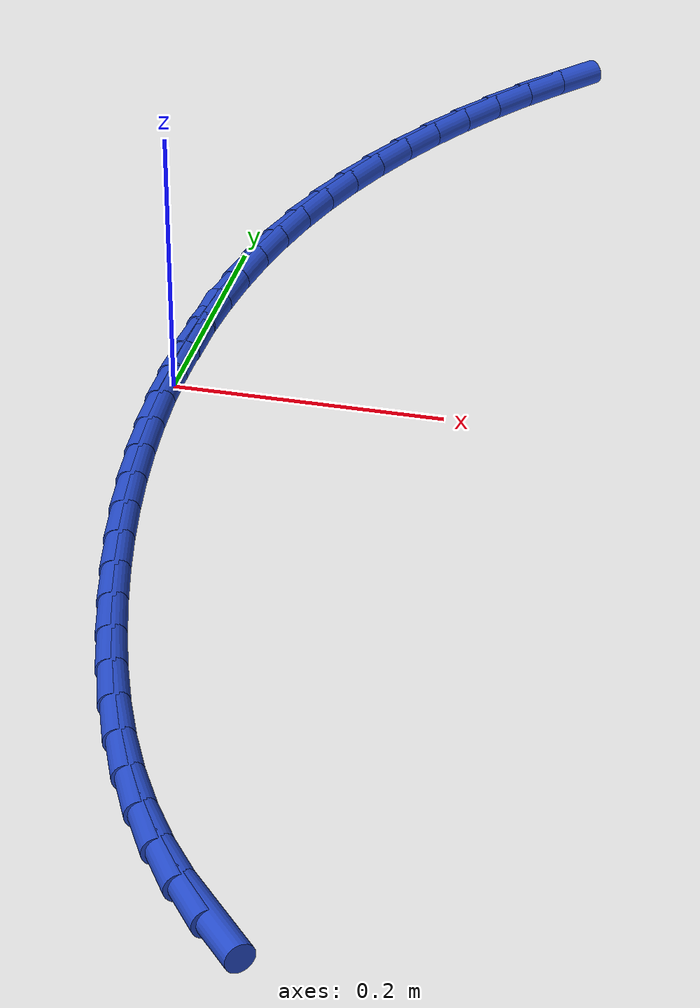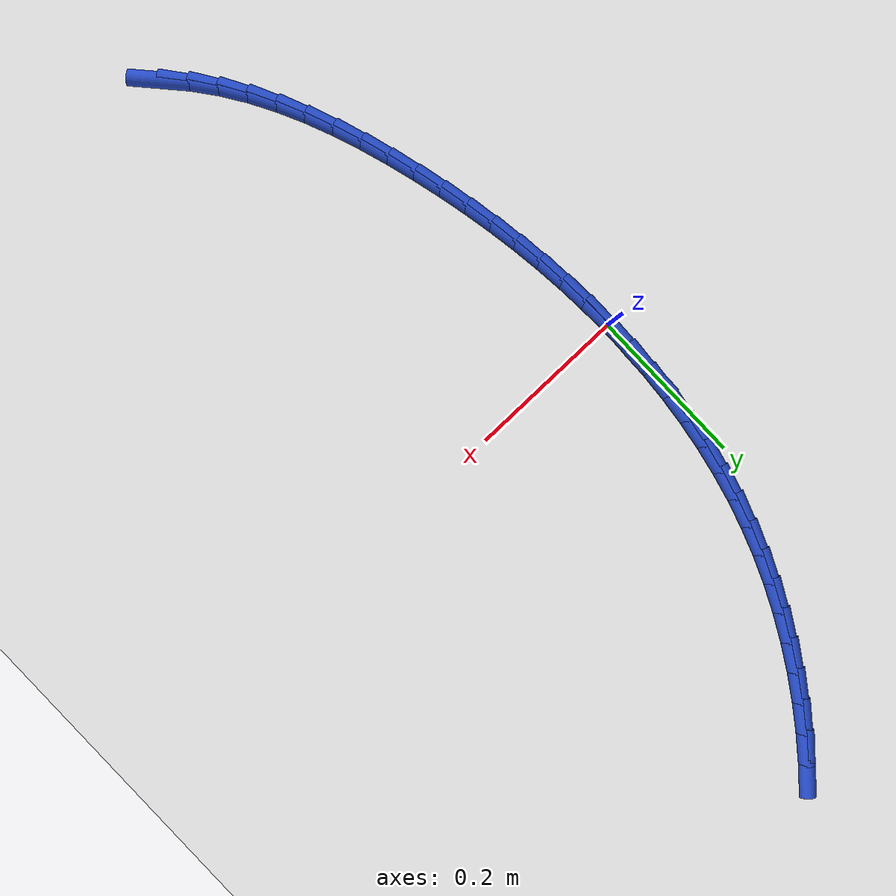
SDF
<sdf version="1.6">
 <world name="default">
  <model name="ground_plane">
   <static>1</static>
   <link name="link">
    <collision name="collision">
     <geometry><plane><normal>0 0 1</normal><size>100 100</size></plane></geometry>
     <surface><friction><ode><mu>100</mu><mu2>50</mu2></ode></friction></surface>
    </collision>
    <visual name="visual">
     <cast_shadows>0</cast_shadows>
     <geometry><plane><normal>0 0 1</normal><size>100 100</size></plane></geometry>
     <material>
      <script><uri>file://media/materials/scripts/gazebo.material</uri><name>Gazebo/WhiteGlow</name></script>
     </material>
    </visual>
   </link>
  </model>
  <model name="line">
   <link name="link_0">
    <pose>2.0816681711721685e-17 2.7755575615628914e-17 0.01 0 1.57 1.5674172207228398</pose>
    <collision name="collision">
     <geometry><cylinder><radius>0.01</radius><length>0.08</length></cylinder></geometry>
    </collision>
    <visual name="visual">
     <material>
      <script><name>Gazebo/Blue</name><uri>file://media/materials/scripts/gazebo.material</uri></script>
     </material>
     <geometry><cylinder><radius>0.01</radius><length>0.08</length></cylinder></geometry>
    </visual>
   </link>
   <link name="link_1">
    <pose>0.00012144590236197738 0.03594010887325938 0.01 0 1.57 1.5309326183171914</pose>
    <collision name="collision">
     <geometry><cylinder><radius>0.01</radius><length>0.08</length></cylinder></geometry>
    </collision>
    <visual name="visual">
     <material>
      <script><name>Gazebo/Blue</name><uri>file://media/materials/scripts/gazebo.material</uri></script>
     </material>
     <geometry><cylinder><radius>0.01</radius><length>0.08</length></cylinder></geometry>
    </visual>
   </link>
   <link name="link_2">
    <pose>0.0015566333333428928 0.07192339239421906 0.01 0 1.57 1.4927208288331493</pose>
    <collision name="collision">
     <geometry><cylinder><radius>0.01</radius><length>0.08</length></cylinder></geometry>
    </collision>
    <visual name="visual">
     <material>
      <script><name>Gazebo/Blue</name><uri>file://media/materials/scripts/gazebo.material</uri></script>
     </material>
     <geometry><cylinder><radius>0.01</radius><length>0.08</length></cylinder></geometry>
    </visual>
   </link>
   <link name="link_3">
    <pose>0.004368637798115889 0.10786665788281713 0.01 0 1.57 1.4526475874665907</pose>
    <collision name="collision">
     <geometry><cylinder><radius>0.01</radius><length>0.08</length></cylinder></geometry>
    </collision>
    <visual name="visual">
     <material>
      <script><name>Gazebo/Blue</name><uri>file://media/materials/scripts/gazebo.material</uri></script>
     </material>
     <geometry><cylinder><radius>0.01</radius><length>0.08</length></cylinder></geometry>
    </visual>
   </link>
   <link name="link_4">
    <pose>0.008620534801854101 0.1436867126589916 0.01 0 1.57 1.4105896299389509</pose>
    <collision name="collision">
     <geometry><cylinder><radius>0.01</radius><length>0.08</length></cylinder></geometry>
    </collision>
    <visual name="visual">
     <material>
      <script><name>Gazebo/Blue</name><uri>file://media/materials/scripts/gazebo.material</uri></script>
     </material>
     <geometry><cylinder><radius>0.01</radius><length>0.08</length></cylinder></geometry>
    </visual>
   </link>
   <link name="link_5">
    <pose>0.014375399849730656 0.17930036404268065 0.01 0 1.57 1.3664394820661452</pose>
    <collision name="collision">
     <geometry><cylinder><radius>0.01</radius><length>0.08</length></cylinder></geometry>
    </collision>
    <visual name="visual">
     <material>
      <script><name>Gazebo/Blue</name><uri>file://media/materials/scripts/gazebo.material</uri></script>
     </material>
     <geometry><cylinder><radius>0.01</radius><length>0.08</length></cylinder></geometry>
    </visual>
   </link>
   <link name="link_6">
    <pose>0.021696308446918666 0.21462441935382215 0.01 0 1.57 1.3201114064045705</pose>
    <collision name="collision">
     <geometry><cylinder><radius>0.01</radius><length>0.08</length></cylinder></geometry>
    </collision>
    <visual name="visual">
     <material>
      <script><name>Gazebo/Blue</name><uri>file://media/materials/scripts/gazebo.material</uri></script>
     </material>
     <geometry><cylinder><radius>0.01</radius><length>0.08</length></cylinder></geometry>
    </visual>
   </link>
   <link name="link_7">
    <pose>0.03064633609859127 0.24957568591235416 0.01 0 1.57 1.2715486068925075</pose>
    <collision name="collision">
     <geometry><cylinder><radius>0.01</radius><length>0.08</length></cylinder></geometry>
    </collision>
    <visual name="visual">
     <material>
      <script><name>Gazebo/Blue</name><uri>file://media/materials/scripts/gazebo.material</uri></script>
     </material>
     <geometry><cylinder><radius>0.01</radius><length>0.08</length></cylinder></geometry>
    </visual>
   </link>
   <link name="link_8">
    <pose>0.04128855198792121 0.28407097234937434 0.01 0 1.57 1.221407493084309</pose>
    <collision name="collision">
     <geometry><cylinder><radius>0.01</radius><length>0.08</length></cylinder></geometry>
    </collision>
    <visual name="visual">
     <material>
      <script><name>Gazebo/Blue</name><uri>file://media/materials/scripts/gazebo.material</uri></script>
     </material>
     <geometry><cylinder><radius>0.01</radius><length>0.08</length></cylinder></geometry>
    </visual>
   </link>
   <link name="link_9">
    <pose>0.05366181786023806 0.3180321078287624 0.01 0 1.57 1.1718742541163207</pose>
    <collision name="collision">
     <geometry><cylinder><radius>0.01</radius><length>0.08</length></cylinder></geometry>
    </collision>
    <visual name="visual">
     <material>
      <script><name>Gazebo/Blue</name><uri>file://media/materials/scripts/gazebo.material</uri></script>
     </material>
     <geometry><cylinder><radius>0.01</radius><length>0.08</length></cylinder></geometry>
    </visual>
   </link>
   <link name="link_10">
    <pose>0.06772602024596482 0.3513973006809181 0.01 0 1.57 1.1233318672756718</pose>
    <collision name="collision">
     <geometry><cylinder><radius>0.01</radius><length>0.08</length></cylinder></geometry>
    </collision>
    <visual name="visual">
     <material>
      <script><name>Gazebo/Blue</name><uri>file://media/materials/scripts/gazebo.material</uri></script>
     </material>
     <geometry><cylinder><radius>0.01</radius><length>0.08</length></cylinder></geometry>
    </visual>
   </link>
   <link name="link_11">
    <pose>0.08342496671793496 0.38410809395238116 0.01 0 1.57 1.0756966413920814</pose>
    <collision name="collision">
     <geometry><cylinder><radius>0.01</radius><length>0.08</length></cylinder></geometry>
    </collision>
    <visual name="visual">
     <material>
      <script><name>Gazebo/Blue</name><uri>file://media/materials/scripts/gazebo.material</uri></script>
     </material>
     <geometry><cylinder><radius>0.01</radius><length>0.08</length></cylinder></geometry>
    </visual>
   </link>
   <link name="link_12">
    <pose>0.10070246484898222 0.41610603068969154 0.01 0 1.57 1.0288739197116965</pose>
    <collision name="collision">
     <geometry><cylinder><radius>0.01</radius><length>0.08</length></cylinder></geometry>
    </collision>
    <visual name="visual">
     <material>
      <script><name>Gazebo/Blue</name><uri>file://media/materials/scripts/gazebo.material</uri></script>
     </material>
     <geometry><cylinder><radius>0.01</radius><length>0.08</length></cylinder></geometry>
    </visual>
   </link>
   <link name="link_13">
    <pose>0.11950232221194006 0.4473326539393886 0.01 0 1.57 0.9827605711106946</pose>
    <collision name="collision">
     <geometry><cylinder><radius>0.01</radius><length>0.08</length></cylinder></geometry>
    </collision>
    <visual name="visual">
     <material>
      <script><name>Gazebo/Blue</name><uri>file://media/materials/scripts/gazebo.material</uri></script>
     </material>
     <geometry><cylinder><radius>0.01</radius><length>0.08</length></cylinder></geometry>
    </visual>
   </link>
   <link name="link_14">
    <pose>0.13976834637964208 0.47772950674801223 0.01 0 1.57 0.9372471302772714</pose>
    <collision name="collision">
     <geometry><cylinder><radius>0.01</radius><length>0.08</length></cylinder></geometry>
    </collision>
    <visual name="visual">
     <material>
      <script><name>Gazebo/Blue</name><uri>file://media/materials/scripts/gazebo.material</uri></script>
     </material>
     <geometry><cylinder><radius>0.01</radius><length>0.08</length></cylinder></geometry>
    </visual>
   </link>
   <link name="link_15">
    <pose>0.16144434492492196 0.5072381321621023 0.01 0 1.57 0.8922196109677276</pose>
    <collision name="collision">
     <geometry><cylinder><radius>0.01</radius><length>0.08</length></cylinder></geometry>
    </collision>
    <visual name="visual">
     <material>
      <script><name>Gazebo/Blue</name><uri>file://media/materials/scripts/gazebo.material</uri></script>
     </material>
     <geometry><cylinder><radius>0.01</radius><length>0.08</length></cylinder></geometry>
    </visual>
   </link>
   <link name="link_16">
    <pose>0.18447412542061323 0.5358000732281987 0.01 0 1.57 0.8475610339252838</pose>
    <collision name="collision">
     <geometry><cylinder><radius>0.01</radius><length>0.08</length></cylinder></geometry>
    </collision>
    <visual name="visual">
     <material>
      <script><name>Gazebo/Blue</name><uri>file://media/materials/scripts/gazebo.material</uri></script>
     </material>
     <geometry><cylinder><radius>0.01</radius><length>0.08</length></cylinder></geometry>
    </visual>
   </link>
   <link name="link_203">
    <pose>0.1853580423852534 -0.5706949101818476 0.01 0 1.57 -0.8406850982269876</pose>
    <collision name="collision">
     <geometry><cylinder><radius>0.01</radius><length>0.08</length></cylinder></geometry>
    </collision>
    <visual name="visual">
     <material>
      <script><name>Gazebo/Blue</name><uri>file://media/materials/scripts/gazebo.material</uri></script>
     </material>
     <geometry><cylinder><radius>0.01</radius><length>0.08</length></cylinder></geometry>
    </visual>
   </link>
   <link name="link_204">
    <pose>0.1617981268343092 -0.5443744482056737 0.01 0 1.57 -0.9211458906384618</pose>
    <collision name="collision">
     <geometry><cylinder><radius>0.01</radius><length>0.08</length></cylinder></geometry>
    </collision>
    <visual name="visual">
     <material>
      <script><name>Gazebo/Blue</name><uri>file://media/materials/scripts/gazebo.material</uri></script>
     </material>
     <geometry><cylinder><radius>0.01</radius><length>0.08</length></cylinder></geometry>
    </visual>
   </link>
   <link name="link_205">
    <pose>0.14040695441229692 -0.5162153105408741 0.01 0 1.57 -0.9983591366299479</pose>
    <collision name="collision">
     <geometry><cylinder><radius>0.01</radius><length>0.08</length></cylinder></geometry>
    </collision>
    <visual name="visual">
     <material>
      <script><name>Gazebo/Blue</name><uri>file://media/materials/scripts/gazebo.material</uri></script>
     </material>
     <geometry><cylinder><radius>0.01</radius><length>0.08</length></cylinder></geometry>
    </visual>
   </link>
   <link name="link_206">
    <pose>0.12114595603457139 -0.4863260694015666 0.01 0 1.57 -1.067070642114062</pose>
    <collision name="collision">
     <geometry><cylinder><radius>0.01</radius><length>0.08</length></cylinder></geometry>
    </collision>
    <visual name="visual">
     <material>
      <script><name>Gazebo/Blue</name><uri>file://media/materials/scripts/gazebo.material</uri></script>
     </material>
     <geometry><cylinder><radius>0.01</radius><length>0.08</length></cylinder></geometry>
    </visual>
   </link>
   <link name="link_207">
    <pose>0.1038515659050374 -0.4549473326858138 0.01 0 1.57 -1.1275092046912898</pose>
    <collision name="collision">
     <geometry><cylinder><radius>0.01</radius><length>0.08</length></cylinder></geometry>
    </collision>
    <visual name="visual">
     <material>
      <script><name>Gazebo/Blue</name><uri>file://media/materials/scripts/gazebo.material</uri></script>
     </material>
     <geometry><cylinder><radius>0.01</radius><length>0.08</length></cylinder></geometry>
    </visual>
   </link>
   <link name="link_208">
    <pose>0.08836000007382148 -0.42231993873041107 0.01 0 1.57 -1.1801198370149892</pose>
    <collision name="collision">
     <geometry><cylinder><radius>0.01</radius><length>0.08</length></cylinder></geometry>
    </collision>
    <visual name="visual">
     <material>
      <script><name>Gazebo/Blue</name><uri>file://media/materials/scripts/gazebo.material</uri></script>
     </material>
     <geometry><cylinder><radius>0.01</radius><length>0.08</length></cylinder></geometry>
    </visual>
   </link>
   <link name="link_209">
    <pose>0.0745074745910489 -0.38868472587215197 0.01 0 1.57 -1.2254342854191662</pose>
    <collision name="collision">
     <geometry><cylinder><radius>0.01</radius><length>0.08</length></cylinder></geometry>
    </collision>
    <visual name="visual">
     <material>
      <script><name>Gazebo/Blue</name><uri>file://media/materials/scripts/gazebo.material</uri></script>
     </material>
     <geometry><cylinder><radius>0.01</radius><length>0.08</length></cylinder></geometry>
    </visual>
   </link>
   <link name="link_210">
    <pose>0.06213020550684531 -0.3542825324478299 0.01 0 1.57 -1.2639858237927417</pose>
    <collision name="collision">
     <geometry><cylinder><radius>0.01</radius><length>0.08</length></cylinder></geometry>
    </collision>
    <visual name="visual">
     <material>
      <script><name>Gazebo/Blue</name><uri>file://media/materials/scripts/gazebo.material</uri></script>
     </material>
     <geometry><cylinder><radius>0.01</radius><length>0.08</length></cylinder></geometry>
    </visual>
   </link>
   <link name="link_211">
    <pose>0.05106440887133641 -0.31935419679423893 0.01 0 1.57 -1.2962533270782803</pose>
    <collision name="collision">
     <geometry><cylinder><radius>0.01</radius><length>0.08</length></cylinder></geometry>
    </collision>
    <visual name="visual">
     <material>
      <script><name>Gazebo/Blue</name><uri>file://media/materials/scripts/gazebo.material</uri></script>
     </material>
     <geometry><cylinder><radius>0.01</radius><length>0.08</length></cylinder></geometry>
    </visual>
   </link>
   <link name="link_212">
    <pose>0.0411463007346477 -0.28414055724817205 0.01 0 1.57 -1.3235698003667937</pose>
    <collision name="collision">
     <geometry><cylinder><radius>0.01</radius><length>0.08</length></cylinder></geometry>
    </collision>
    <visual name="visual">
     <material>
      <script><name>Gazebo/Blue</name><uri>file://media/materials/scripts/gazebo.material</uri></script>
     </material>
     <geometry><cylinder><radius>0.01</radius><length>0.08</length></cylinder></geometry>
    </visual>
   </link>
   <link name="link_213">
    <pose>0.03223890157114617 -0.24884831234658603 0.01 0 1.57 -1.350765888337067</pose>
    <collision name="collision">
     <geometry><cylinder><radius>0.01</radius><length>0.08</length></cylinder></geometry>
    </collision>
    <visual name="visual">
     <material>
      <script><name>Gazebo/Blue</name><uri>file://media/materials/scripts/gazebo.material</uri></script>
     </material>
     <geometry><cylinder><radius>0.01</radius><length>0.08</length></cylinder></geometry>
    </visual>
   </link>
   <link name="link_214">
    <pose>0.024336887477343038 -0.21351647574922 0.01 0 1.57 -1.3792545460376588</pose>
    <collision name="collision">
     <geometry><cylinder><radius>0.01</radius><length>0.08</length></cylinder></geometry>
    </collision>
    <visual name="visual">
     <material>
      <script><name>Gazebo/Blue</name><uri>file://media/materials/scripts/gazebo.material</uri></script>
     </material>
     <geometry><cylinder><radius>0.01</radius><length>0.08</length></cylinder></geometry>
    </visual>
   </link>
   <link name="link_215">
    <pose>0.017475289555982224 -0.17813266244285997 0.01 0 1.57 -1.4089951452996297</pose>
    <collision name="collision">
     <geometry><cylinder><radius>0.01</radius><length>0.08</length></cylinder></geometry>
    </collision>
    <visual name="visual">
     <material>
      <script><name>Gazebo/Blue</name><uri>file://media/materials/scripts/gazebo.material</uri></script>
     </material>
     <geometry><cylinder><radius>0.01</radius><length>0.08</length></cylinder></geometry>
    </visual>
   </link>
   <link name="link_216">
    <pose>0.011689149448897517 -0.14268447399104367 0.01 0 1.57 -1.4399328616877674</pose>
    <collision name="collision">
     <geometry><cylinder><radius>0.01</radius><length>0.08</length></cylinder></geometry>
    </collision>
    <visual name="visual">
     <material>
      <script><name>Gazebo/Blue</name><uri>file://media/materials/scripts/gazebo.material</uri></script>
     </material>
     <geometry><cylinder><radius>0.01</radius><length>0.08</length></cylinder></geometry>
    </visual>
   </link>
   <link name="link_217">
    <pose>0.007013508797923126 -0.10715951195731158 0.01 0 1.57 -1.47199829790016</pose>
    <collision name="collision">
     <geometry><cylinder><radius>0.01</radius><length>0.08</length></cylinder></geometry>
    </collision>
    <visual name="visual">
     <material>
      <script><name>Gazebo/Blue</name><uri>file://media/materials/scripts/gazebo.material</uri></script>
     </material>
     <geometry><cylinder><radius>0.01</radius><length>0.08</length></cylinder></geometry>
    </visual>
   </link>
   <link name="link_218">
    <pose>0.003483409244892802 -0.07154537790520134 0.01 0 1.57 -1.505107117296131</pose>
    <collision name="collision">
     <geometry><cylinder><radius>0.01</radius><length>0.08</length></cylinder></geometry>
    </collision>
    <visual name="visual">
     <material>
      <script><name>Gazebo/Blue</name><uri>file://media/materials/scripts/gazebo.material</uri></script>
     </material>
     <geometry><cylinder><radius>0.01</radius><length>0.08</length></cylinder></geometry>
    </visual>
   </link>
   <link name="link_219">
    <pose>0.0011338924316404639 -0.035829673398251535 0.01 0 1.57 -1.5391601433136448</pose>
    <collision name="collision">
     <geometry><cylinder><radius>0.01</radius><length>0.08</length></cylinder></geometry>
    </collision>
    <visual name="visual">
     <material>
      <script><name>Gazebo/Blue</name><uri>file://media/materials/scripts/gazebo.material</uri></script>
     </material>
     <geometry><cylinder><radius>0.01</radius><length>0.08</length></cylinder></geometry>
    </visual>
   </link>
   <link name="link_220">
    <pose>1.9081958235744878e-17 6.938893903907228e-17 0.01 0 1.57 1.56754866162105</pose>
    <collision name="collision">
     <geometry><cylinder><radius>0.01</radius><length>0.08</length></cylinder></geometry>
    </collision>
    <visual name="visual">
     <material>
      <script><name>Gazebo/Blue</name><uri>file://media/materials/scripts/gazebo.material</uri></script>
     </material>
     <geometry><cylinder><radius>0.01</radius><length>0.08</length></cylinder></geometry>
    </visual>
   </link>
   <link name="link_221">
    <pose>0.00011677359180541514 0.035956040726012196 0.01 0 1.57 1.5319603768643864</pose>
    <collision name="collision">
     <geometry><cylinder><radius>0.01</radius><length>0.08</length></cylinder></geometry>
    </collision>
    <visual name="visual">
     <material>
      <script><name>Gazebo/Blue</name><uri>file://media/materials/scripts/gazebo.material</uri></script>
     </material>
     <geometry><cylinder><radius>0.01</radius><length>0.08</length></cylinder></geometry>
    </visual>
   </link>
   <link name="link_222">
    <pose>0.001519254848890584 0.07205084721624982 0.01 0 1.57 1.5497135802763413</pose>
    <collision name="collision">
     <geometry><cylinder><radius>0.01</radius><length>0.08</length></cylinder></geometry>
    </collision>
    <visual name="visual">
     <material>
      <script><name>Gazebo/Blue</name><uri>file://media/materials/scripts/gazebo.material</uri></script>
     </material>
     <geometry><cylinder><radius>0.01</radius><length>0.08</length></cylinder></geometry>
    </visual>
   </link>
  </model>
 </world>
</sdf>
